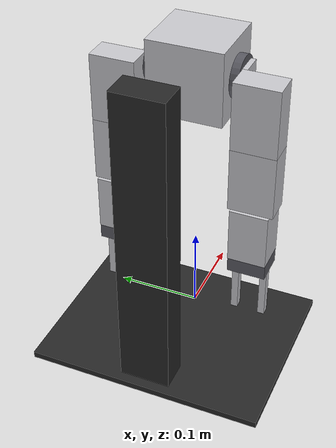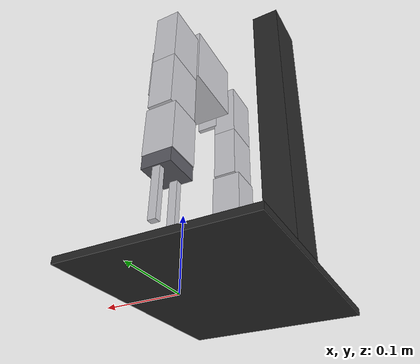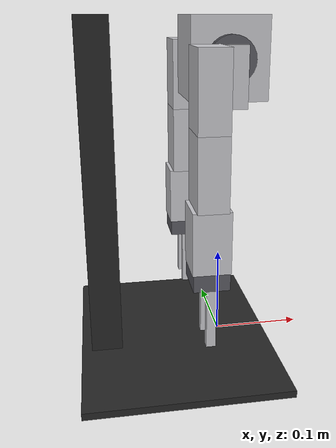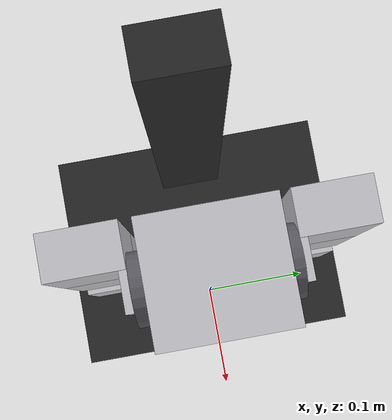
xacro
<?xml version="1.0"?>
<robot name="soma" xmlns:xacro="http://www.ros.org/wiki/xacro">

  <xacro:include filename="$(find soma_description)/urdf/materials.xacro"/>
  <xacro:include filename="$(find soma_description)/urdf/soma_arm.xacro"/>

  <!-- ============ bench dimensions, measured 2026-08-05 ============
       Provenance for every literal: config/dimensions.yaml, bench section. -->
  <xacro:property name="mount_lx"     value="0.0811"/>  <!-- central box front-back -->
  <xacro:property name="mount_ly"     value="0.0881"/>  <!-- disc seat to disc seat -->
  <xacro:property name="mount_lz"     value="0.0856"/>  <!-- central box top-bottom -->
  <xacro:property name="tip_lane_y"   value="0.081"/>   <!-- closed tip lane, half the 162 mm between tips -->
  <xacro:property name="mount_h"      value="0.3272"/>   <!-- disc axis over the plate -->
  <xacro:property name="plate_lx"     value="0.220"/>
  <xacro:property name="plate_ly"     value="0.280"/>
  <xacro:property name="plate_lz"     value="0.008"/>
  <xacro:property name="plate_x_back" value="0.055"/>   <!-- plate center behind origin -->
  <xacro:property name="col_lx"       value="0.035"/>
  <xacro:property name="col_ly"       value="0.060"/>
  <xacro:property name="col_gap_x"    value="0.078"/>   <!-- box rear to column front -->
  <xacro:property name="col_h"        value="0.370"/>
  <xacro:property name="col_cx"       value="${-mount_lx/2 - col_gap_x - col_lx/2}"/>

  <link name="world"/>

  <joint name="bench_joint" type="fixed">
    <parent link="world"/>
    <child link="bench_link"/>
    <origin xyz="0 0 0"/>
  </joint>

  <!-- plate + column + central box: one rigid, static piece of world -->
  <link name="bench_link">
    <visual>
      <origin xyz="${-plate_x_back} 0 ${-plate_lz/2}"/>
      <geometry><box size="${plate_lx} ${plate_ly} ${plate_lz}"/></geometry>
      <material name="matte_black"/>
    </visual>
    <visual>
      <origin xyz="${col_cx} 0 ${col_h/2}"/>
      <geometry><box size="${col_lx} ${col_ly} ${col_h}"/></geometry>
      <material name="matte_black"/>
    </visual>
    <visual>
      <origin xyz="0 0 ${mount_h}"/>
      <geometry><box size="${mount_lx} ${mount_ly} ${mount_lz}"/></geometry>
      <material name="aluminum"/>
    </visual>
    <collision>
      <origin xyz="${-plate_x_back} 0 ${-plate_lz/2}"/>
      <geometry><box size="${plate_lx} ${plate_ly} ${plate_lz}"/></geometry>
    </collision>
    <collision>
      <origin xyz="${col_cx} 0 ${col_h/2}"/>
      <geometry><box size="${col_lx + 0.01} ${col_ly + 0.01} ${col_h}"/></geometry>
    </collision>
    <collision>
      <origin xyz="0 0 ${mount_h}"/>
      <geometry><box size="${mount_lx} ${mount_ly} ${mount_lz}"/></geometry>
    </collision>
    <inertial>
      <mass value="3.0"/>
      <inertia ixx="0.05" iyy="0.05" izz="0.05" ixy="0" ixz="0" iyz="0"/>
    </inertial>
  </link>

  <!-- left arm: measured pulse ends, radians scaled by the probe of 2026-10-26, hug sense side=+1 -->
  <xacro:soma_arm prefix="left_arm_" parent="bench_link" side="1"
                  yaw_lower="-2.6238" yaw_upper="0.0342"
                  shoulder_lower="-0.4701" shoulder_upper="2.3173"
                  elbow_lower="-1.8850" elbow_upper="0.8671"
                  wrist_pitch_lower="-1.4740" wrist_pitch_upper="1.1922"
                  wrist_roll_lower="-1.4687" wrist_roll_upper="1.2017">
    <origin xyz="0 ${mount_ly/2} ${mount_h}" rpy="${-pi/2} ${pi/2} 0"/>
  </xacro:soma_arm>

  <!-- right arm: macro defaults carry its measured limits, side=-1 -->
  <xacro:soma_arm prefix="right_arm_" parent="bench_link" side="-1">
    <origin xyz="0 ${-mount_ly/2} ${mount_h}" rpy="${pi/2} ${pi/2} 0"/>
  </xacro:soma_arm>

</robot>

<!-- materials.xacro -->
<robot xmlns:xacro="http://www.ros.org/wiki/xacro">
  <!-- SOMA palette. Kept in one place so every model looks the same. -->
  <material name="aluminum">
    <color rgba="0.78 0.78 0.80 1.0"/>
  </material>
  <material name="servo_red">
    <color rgba="0.75 0.12 0.12 1.0"/>
  </material>
  <material name="matte_black">
    <color rgba="0.15 0.15 0.15 1.0"/>
  </material>
  <material name="dark_gray">
    <color rgba="0.35 0.35 0.38 1.0"/>
  </material>
  <material name="soma_teal">
    <color rgba="0.11 0.62 0.46 1.0"/>
  </material>
  <material name="l16_purple">
    <color rgba="0.50 0.47 0.87 1.0"/>
  </material>
</robot>

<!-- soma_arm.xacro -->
<robot xmlns:xacro="http://www.ros.org/wiki/xacro">

  <xacro:property name="disc_r"         value="0.02455"/> <!-- slew disc, the one that rotates -->
  <xacro:property name="disc_h"         value="0.0097"/>  <!-- disc protrusion from its box -->
  <xacro:property name="clavicle_len"   value="0.0327"/>   <!-- disc center to shoulder axis -->
  <xacro:property name="upper_len"      value="0.0800"/>  <!-- shoulder to elbow -->
  <xacro:property name="fore_len"       value="0.0760"/>   <!-- elbow to wrist pitch -->
  <xacro:property name="wrist_len"      value="0.0663"/>  <!-- wrist pitch to gripper mount face -->
  <xacro:property name="gripper_base_h" value="0.0178"/>  <!-- mount face to finger gear axes -->
  <xacro:property name="finger_len"     value="0.0650"/>  <!-- gear axis to fingertip -->
  <xacro:property name="clavicle_angle" value="2.068"/>   <!-- rad: clavicle direction at the hanging zero, from down, backward (DH theta offset) -->
  <xacro:property name="tool_closed_len" value="0.150"/>  <!-- wrist pitch axis to fingertip, closed, one reading (the IK tool) -->
  <xacro:property name="tool_open_len"  value="0.100"/>   <!-- wrist pitch axis to the farthest point, fully open -->
  <xacro:property name="plane_offset"   value="0.02725"/> <!-- working plane outboard of the disc face: a DH d -->
  <xacro:property name="finger_sep"     value="0.0257"/>  <!-- between the two gear axes -->
  <xacro:property name="plate_w"        value="0.0319"/>  <!-- link plate width -->
  <xacro:property name="plate_t"        value="0.0528"/>  <!-- arm sandwich outer width -->

  <!-- MG996R class servo, 40x20 body (datasheet) -->
  <xacro:property name="servo_lx" value="0.041"/>
  <xacro:property name="servo_ly" value="0.020"/>
  <xacro:property name="servo_lz" value="0.038"/>

  <xacro:property name="effort_nm"  value="1.0"/>   <!-- MG996R ~10 kg.cm = 0.98 N.m -->
  <xacro:property name="vel_rads"   value="3.0"/>   <!-- ~0.17 s/60 deg plus margin -->

  <!-- ==================== inertia macros ==================== -->
  <xacro:macro name="box_inertia" params="m x y z">
    <inertial>
      <mass value="${m}"/>
      <inertia ixx="${m*(y*y+z*z)/12.0}" iyy="${m*(x*x+z*z)/12.0}"
               izz="${m*(x*x+y*y)/12.0}" ixy="0" ixz="0" iyz="0"/>
    </inertial>
  </xacro:macro>
  <xacro:macro name="cylinder_inertia" params="m r h">
    <inertial>
      <mass value="${m}"/>
      <inertia ixx="${m*(3*r*r+h*h)/12.0}" iyy="${m*(3*r*r+h*h)/12.0}"
               izz="${m*r*r/2.0}" ixy="0" ixz="0" iyz="0"/>
    </inertial>
  </xacro:macro>

  <!-- ==================== the arm macro ==================== -->
  <xacro:macro name="soma_arm"
               params="prefix parent side:=1 *origin
                       yaw_lower:=-2.1838 yaw_upper:=0.2673
                       shoulder_lower:=-0.3826 shoulder_upper:=2.0362
                       elbow_lower:=-1.9404 elbow_upper:=0.4771
                       wrist_pitch_lower:=-1.5645 wrist_pitch_upper:=0.4041
                       wrist_roll_lower:=-1.7122 wrist_roll_upper:=1.1074">

    <!-- mount to the parent link, at the disc seat on the bench box -->
    <joint name="${prefix}mount_joint" type="fixed">
      <parent link="${parent}"/>
      <child link="${prefix}mount_link"/>
      <xacro:insert_block name="origin"/>
    </joint>
    <link name="${prefix}mount_link"/>

    <!-- A: the slew disc, J1. Horizontal axis, the arm's fore/aft swing. -->
    <joint name="${prefix}yaw_joint" type="revolute">
      <parent link="${prefix}mount_link"/>
      <child link="${prefix}turntable_link"/>
      <origin xyz="0 0 0"/>
      <axis xyz="0 0 ${side}"/>
      <limit lower="${yaw_lower}" upper="${yaw_upper}" effort="${effort_nm}" velocity="${vel_rads}"/>
    </joint>

    <!-- disc plus the clavicle bracket that carries the shoulder servo -->
    <link name="${prefix}turntable_link">
      <visual>
        <origin xyz="0 0 ${disc_h/2}"/>
        <geometry><cylinder radius="${disc_r}" length="${disc_h}"/></geometry>
        <material name="dark_gray"/>
      </visual>
      <visual>
        <origin xyz="${clavicle_len/2} 0 ${disc_h + 0.003}"/>
        <geometry><box size="${clavicle_len + 0.030} 0.030 0.006"/></geometry>
        <material name="aluminum"/>
      </visual>
      <collision>
        <origin xyz="${clavicle_len/2} 0 ${disc_h/2 + 0.003}"/>
        <geometry><box size="${clavicle_len + 2*disc_r} 0.050 ${disc_h + 0.006}"/></geometry>
      </collision>
      <xacro:box_inertia m="0.10" x="${clavicle_len + 2*disc_r}" y="0.05" z="${disc_h + 0.006}"/>
    </link>

    <!-- B: shoulder. PARALLEL to J1, one clavicle away. -->
    <joint name="${prefix}shoulder_joint" type="revolute">
      <parent link="${prefix}turntable_link"/>
      <child link="${prefix}upper_arm_link"/>
      <!-- z: the disc face plus the plane offset, so the planar chain and
           the fingertip work in the measured lane (2026-10-27). -->
      <origin xyz="${clavicle_len*cos(clavicle_angle)} ${side*clavicle_len*sin(clavicle_angle)} ${disc_h + plane_offset}"/>
      <axis xyz="0 0 ${side}"/>
      <limit lower="${shoulder_lower}" upper="${shoulder_upper}" effort="${effort_nm}" velocity="${vel_rads}"/>
    </joint>

    <link name="${prefix}upper_arm_link">
      <visual>
        <origin xyz="${upper_len/2} 0 0"/>
        <geometry><box size="${upper_len} ${plate_w} ${plate_t}"/></geometry>
        <material name="aluminum"/>
      </visual>
      <collision>
        <origin xyz="${upper_len/2} 0 0"/>
        <geometry><box size="${upper_len + 0.02} ${plate_w + 0.01} ${plate_t + 0.01}"/></geometry>
      </collision>
      <xacro:box_inertia m="0.18" x="${upper_len}" y="${plate_w}" z="${plate_t}"/>
    </link>

    <!-- C: elbow (twin servo block). Parallel again. -->
    <joint name="${prefix}elbow_joint" type="revolute">
      <parent link="${prefix}upper_arm_link"/>
      <child link="${prefix}forearm_link"/>
      <origin xyz="${upper_len} 0 0"/>
      <axis xyz="0 0 ${side}"/>
      <limit lower="${elbow_lower}" upper="${elbow_upper}" effort="${effort_nm}" velocity="${vel_rads}"/>
    </joint>

    <link name="${prefix}forearm_link">
      <visual>
        <origin xyz="${fore_len/2} 0 0"/>
        <geometry><box size="${fore_len} ${plate_w} ${plate_t}"/></geometry>
        <material name="aluminum"/>
      </visual>
      <collision>
        <origin xyz="${fore_len/2} 0 0"/>
        <geometry><box size="${fore_len + 0.02} ${plate_w + 0.01} ${plate_t + 0.01}"/></geometry>
      </collision>
      <xacro:box_inertia m="0.16" x="${fore_len}" y="${plate_w}" z="${plate_t}"/>
    </link>

    <!-- D: wrist pitch. Last of the parallel four. -->
    <joint name="${prefix}wrist_pitch_joint" type="revolute">
      <parent link="${prefix}forearm_link"/>
      <child link="${prefix}wrist_link"/>
      <origin xyz="${fore_len} 0 0"/>
      <axis xyz="0 0 ${side}"/>
      <limit lower="${wrist_pitch_lower}" upper="${wrist_pitch_upper}" effort="${effort_nm}" velocity="${vel_rads}"/>
    </joint>

    <link name="${prefix}wrist_link">
      <visual>
        <origin xyz="${wrist_len/2} 0 0"/>
        <geometry><box size="${wrist_len} 0.040 0.045"/></geometry>
        <material name="aluminum"/>
      </visual>
      <collision>
        <origin xyz="${wrist_len/2} 0 0"/>
        <geometry><box size="${wrist_len} 0.045 0.050"/></geometry>
      </collision>
      <xacro:box_inertia m="0.09" x="${wrist_len}" y="0.04" z="0.045"/>
    </link>

    <!-- E: wrist roll, about the forearm axis. The out-of-plane joint. -->
    <joint name="${prefix}wrist_roll_joint" type="revolute">
      <parent link="${prefix}wrist_link"/>
      <child link="${prefix}gripper_base_link"/>
      <origin xyz="${wrist_len} 0 0"/>
      <axis xyz="${-side} 0 0"/>
      <limit lower="${wrist_roll_lower}" upper="${wrist_roll_upper}" effort="${effort_nm}" velocity="${vel_rads}"/>
    </joint>

    <link name="${prefix}gripper_base_link">
      <visual>
        <origin xyz="${gripper_base_h/2} 0 0"/>
        <geometry><box size="${gripper_base_h} 0.038 0.045"/></geometry>
        <material name="dark_gray"/>
      </visual>
      <collision>
        <origin xyz="${gripper_base_h/2} 0 0"/>
        <geometry><box size="${gripper_base_h} 0.038 0.045"/></geometry>
      </collision>
      <xacro:box_inertia m="0.12" x="${gripper_base_h}" y="0.038" z="0.045"/>
    </link>

    <!-- F: geared gripper. Left finger is driven, right one mirrors it. -->
    <joint name="${prefix}finger_l_joint" type="revolute">
      <parent link="${prefix}gripper_base_link"/>
      <child link="${prefix}finger_l_link"/>
      <origin xyz="${gripper_base_h} 0 ${finger_sep/2}"/>
      <!-- 0 -1 0: a positive command OPENS (the tips move apart). With 0 1 0
           the model drew 1.0 as two crossed fingers (fixed 2026-10-12). -->
      <axis xyz="0 -1 0"/>
      <limit lower="0.0" upper="1.0" effort="${effort_nm}" velocity="${vel_rads}"/>
    </joint>
    <link name="${prefix}finger_l_link">
      <visual>
        <origin xyz="${finger_len/2} 0 0.004"/>
        <geometry><box size="${finger_len} 0.010 0.008"/></geometry>
        <material name="aluminum"/>
      </visual>
      <collision>
        <origin xyz="${finger_len/2} 0 0.004"/>
        <geometry><box size="${finger_len} 0.010 0.008"/></geometry>
      </collision>
      <xacro:box_inertia m="0.03" x="${finger_len}" y="0.01" z="0.008"/>
    </link>

    <joint name="${prefix}finger_r_joint" type="revolute">
      <parent link="${prefix}gripper_base_link"/>
      <child link="${prefix}finger_r_link"/>
      <origin xyz="${gripper_base_h} 0 ${-finger_sep/2}"/>
      <axis xyz="0 -1 0"/>
      <limit lower="-1.0" upper="0.0" effort="${effort_nm}" velocity="${vel_rads}"/>
      <mimic joint="${prefix}finger_l_joint" multiplier="-1.0"/>
    </joint>
    <link name="${prefix}finger_r_link">
      <visual>
        <origin xyz="${finger_len/2} 0 -0.004"/>
        <geometry><box size="${finger_len} 0.010 0.008"/></geometry>
        <material name="aluminum"/>
      </visual>
      <collision>
        <origin xyz="${finger_len/2} 0 -0.004"/>
        <geometry><box size="${finger_len} 0.010 0.008"/></geometry>
      </collision>
      <xacro:box_inertia m="0.03" x="${finger_len}" y="0.01" z="0.008"/>
    </link>

    <!-- tool frame (gripper tip, the IK target) -->
    <joint name="${prefix}tool0_joint" type="fixed">
      <parent link="${prefix}gripper_base_link"/>
      <child link="${prefix}tool0"/>
      <origin xyz="${gripper_base_h + finger_len} 0 0"/>
    </joint>
    <link name="${prefix}tool0"/>

  </xacro:macro>
</robot>
